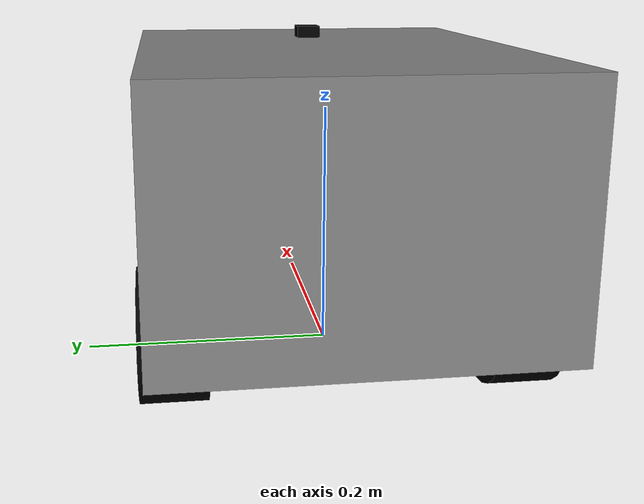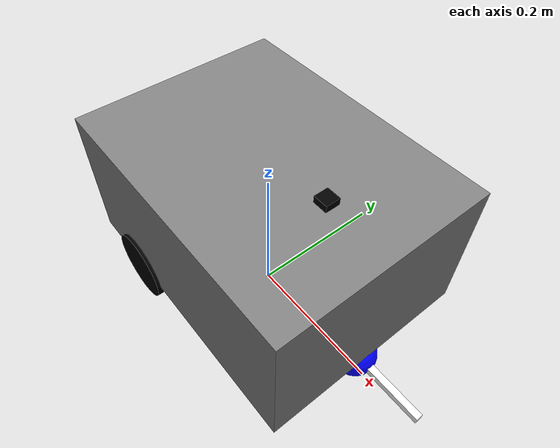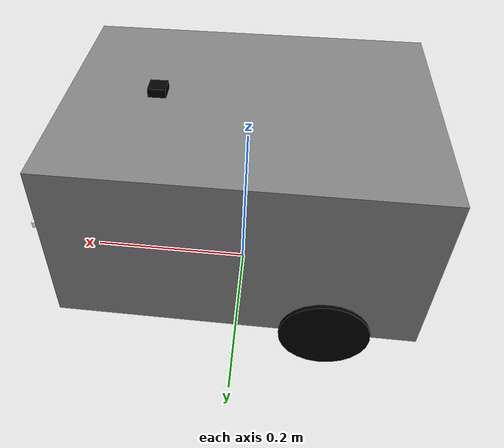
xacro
<?xml version="1.0"?>
<robot name="my_box_robot" xmlns:xacro="http://ros.org/wiki/xacro">

  <!-- Materiales -->
  <material name="gray">
    <color rgba="0.5 0.5 0.5 1.0"/>
  </material>
  <material name="black">
    <color rgba="0.0 0.0 0.0 1.0"/>
  </material>
  <material name="blue">
    <color rgba="0.0 0.0 1.0 1.0"/>
  </material>
  <material name="white">
    <color rgba="1 1 1 1"/>
  </material>

  <!-- Base del robot (elevada) -->
  <link name="base_link">
    <visual>
      <origin xyz="0 0 0.15" rpy="0 0 0"/>
      <geometry>
        <box size="0.4 0.3 0.2"/>
      </geometry>
      <material name="gray"/>
    </visual>
    <collision>
      <origin xyz="0 0 0.15" rpy="0 0 0"/>
      <geometry>
        <box size="0.4 0.3 0.2"/>
      </geometry>
    </collision>
    <inertial>
      <mass value="5.0"/>
      <origin xyz="0 0 0.15" rpy="0 0 0"/>
      <inertia ixx="0.1" iyy="0.1" izz="0.1" ixy="0.0" ixz="0.0" iyz="0.0"/>
    </inertial>
  </link>

    <gazebo reference="base_link">
        <material>Gazebo/Red</material>
    </gazebo>

  <!-- Rueda izquierda -->
  <link name="left_wheel">
    <visual>
      <origin xyz="0 0 0" rpy="0 0 0"/>
      <geometry>
        <cylinder length="0.05" radius="0.05"/>
      </geometry>
      <material name="black"/>
    </visual>
    <collision>
      <origin xyz="0 0 0" rpy="0 0 0"/>
      <geometry>
        <cylinder length="0.05" radius="0.05"/>
      </geometry>
    </collision>
    <inertial>
      <mass value="0.2"/>
      <origin xyz="0 0 0" rpy="0 0 0"/>
      <inertia ixx="0.001" iyy="0.001" izz="0.001" ixy="0.0" ixz="0.0" iyz="0.0"/>
    </inertial>
  </link>

    <gazebo reference="left_wheel">
        <material>Gazebo/Black</material>
    </gazebo>

  <!-- Rueda derecha -->
  <link name="right_wheel">
    <visual>
      <origin xyz="0 0 0" rpy="0 0 0"/>
      <geometry>
        <cylinder length="0.05" radius="0.05"/>
      </geometry>
      <material name="black"/>
    </visual>
    <collision>
      <origin xyz="0 0 0" rpy="0 0 0"/>
      <geometry>
        <cylinder length="0.05" radius="0.05"/>
      </geometry>
    </collision>
    <inertial>
      <mass value="0.2"/>
      <origin xyz="0 0 0" rpy="0 0 0"/>
      <inertia ixx="0.001" iyy="0.001" izz="0.001" ixy="0.0" ixz="0.0" iyz="0.0"/>
    </inertial>
  </link>

  <gazebo reference="right_wheel">
    <material>Gazebo/Black</material>
  </gazebo>

  <!-- Rueda caster frontal -->
  <link name="caster_wheel">
    <visual>
      <origin xyz="0 0 0" rpy="0 0 0"/>
      <geometry>
        <sphere radius="0.03"/>
      </geometry>
      <material name="blue"/>
    </visual>
    <collision>
      <origin xyz="0 0 0" rpy="0 0 0"/>
      <geometry>
        <sphere radius="0.03"/>
      </geometry>
    </collision>
    <inertial>
      <mass value="0.1"/>
      <origin xyz="0 0 0" rpy="0 0 0"/>
      <inertia ixx="0.0001" iyy="0.0001" izz="0.0001" ixy="0.0" ixz="0.0" iyz="0.0"/>
    </inertial>
  </link>

  <gazebo reference="caster_wheel">
    <material>Gazebo/Blue</material>
  </gazebo>

  <!-- Articulación rueda izquierda -->
  <joint name="left_wheel_joint" type="continuous">
    <parent link="base_link"/>
    <child link="left_wheel"/>
    <origin xyz="-0.1 0.13 0.05" rpy="1.5708 0 0"/>
    <axis xyz="0 0 1"/>
    <limit effort="1.0" velocity="10.0"/>
    <dynamics damping="0.1"/>
  </joint>

  <!-- Articulación rueda derecha -->
  <joint name="right_wheel_joint" type="continuous">
    <parent link="base_link"/>
    <child link="right_wheel"/>
    <origin xyz="-0.1 -0.13 0.05" rpy="1.5708 0 0"/>
    <axis xyz="0 0 1"/>
    <limit effort="1.0" velocity="10.0"/>
    <dynamics damping="0.1"/>
  </joint>

  <!-- Articulación rueda caster -->
  <joint name="caster_wheel_joint" type="fixed">
    <parent link="base_link"/>
    <child link="caster_wheel"/>
    <origin xyz="0.18 0 0.03" rpy="0 0 0"/>
  </joint>

<link name="left_marker">
  <visual>
    <origin xyz="0.06 0 0" rpy="0 0 0"/>
    <geometry>
      <box size="0.1 0.01 0.01"/>
    </geometry>
    <material name="white"/>
  </visual>
</link>

<joint name="left_marker_joint" type="fixed">
  <parent link="left_wheel"/>
  <child link="left_marker"/>
  <origin xyz="0 0 0" rpy="0 0 0"/>
</joint>

<link name="right_marker">
  <visual>
    <origin xyz="0.06 0 0" rpy="0 0 0"/>
    <geometry>
      <box size="0.1 0.01 0.01"/>
    </geometry>
    <material name="white"/>
  </visual>
</link>

<joint name="right_marker_joint" type="fixed">
  <parent link="right_wheel"/>
  <child link="right_marker"/>
  <origin xyz="0 0 0" rpy="0 0 0"/>
</joint>

<link name="caster_marker">
  <visual>
    <origin xyz="0.06 0 0" rpy="0 0 0"/>
    <geometry>
      <box size="0.1 0.01 0.01"/>
    </geometry>
    <material name="white"/>
  </visual>
</link>

<joint name="caster_marker_joint" type="fixed">
  <parent link="caster_wheel"/>
  <child link="caster_marker"/>
  <origin xyz="0 0 0" rpy="0 0 0"/>
</joint>

<!-- Link de la cámara -->
<link name="camera_link">
  <visual>
    <origin xyz="0 0 0" rpy="0 0 0"/>
    <geometry>
      <box size="0.02 0.02 0.02"/>
    </geometry>
    <material name="black"/>
  </visual>
</link>

<!-- Articulación fija para unirla al robot -->
<joint name="camera_joint" type="fixed">
  <parent link="base_link"/>
  <child link="camera_link"/>
  <origin xyz="0.1 0 0.25" rpy="0 0 0"/>
</joint>

<gazebo reference="camera_link">
  <sensor name="camera" type="camera">
    <update_rate>30.0</update_rate>
    <camera>
      <horizontal_fov>1.047</horizontal_fov>
      <image>
        <width>640</width>
        <height>480</height>
        <format>R8G8B8</format>
      </image>
      <clip>
        <near>0.1</near>
        <far>100</far>
      </clip>
    </camera>
    <plugin name="camera_controller" filename="libgazebo_ros_camera.so">
      <alwaysOn>true</alwaysOn>
      <updateRate>30.0</updateRate>
      <cameraName>camera</cameraName>
      <imageTopicName>image_raw</imageTopicName>
      <cameraInfoTopicName>camera_info</cameraInfoTopicName>
      <frameName>camera_link</frameName>
    </plugin>
  </sensor>
</gazebo>

<gazebo>
  <plugin name="diff_drive_plugin" filename="libdiff_drive_plugin.so">
    <wheel_radius>0.05</wheel_radius>
    <wheel_separation>0.26</wheel_separation>
  </plugin>
</gazebo>

</robot>
